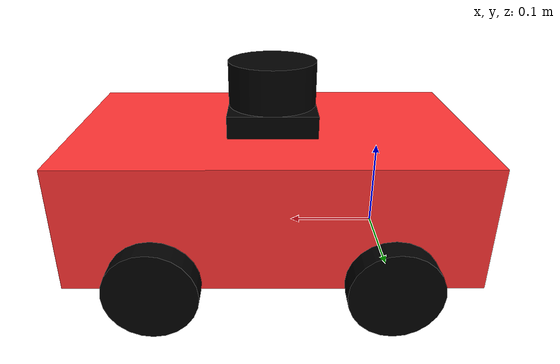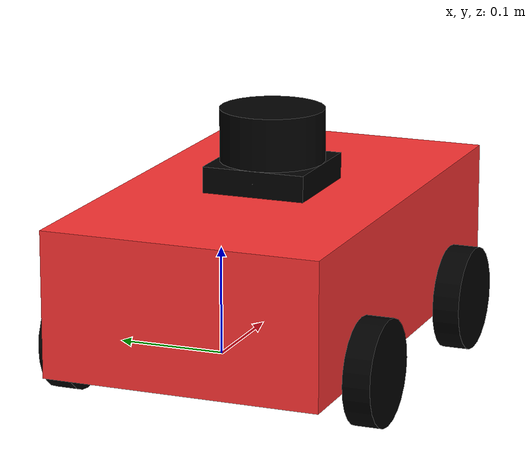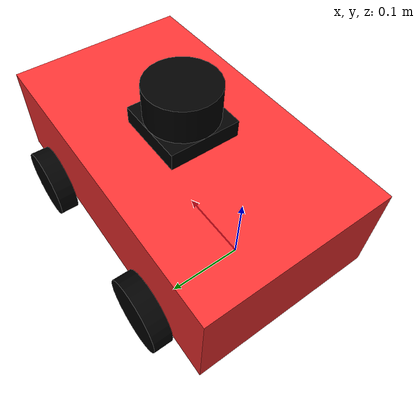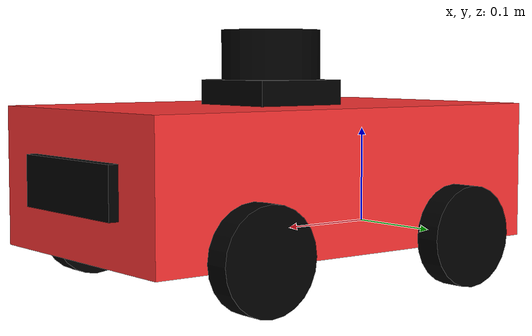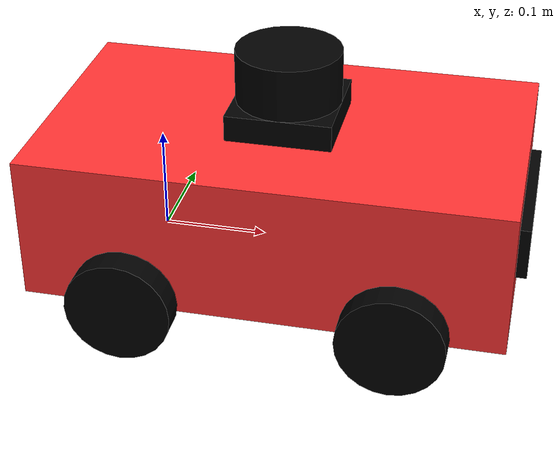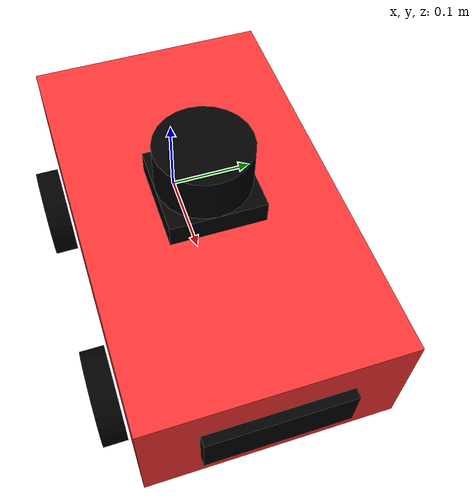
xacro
<?xml version="1.0"?>
<robot xmlns:xacro="http://www.ros.org/wiki/xacro" name="robotie">

    <xacro:include filename="inertia.xacro"/>
    <xacro:include filename="properties.xacro"/>
    <xacro:include filename="gazebo.xacro"/>
    <xacro:include filename="ros2_control.xacro"/>

    <link name="base_link"/>

    <link name="base_footprint">
    </link>
    <joint name="base_footprint_joint" type="fixed">
        <origin xyz="0.0 0.0 0.0" rpy="0.0 0.0 0.0"/>
        <parent link="base_link"/>
        <child link="base_footprint"/>
    </joint>

    <joint name="chassis_joint" type="fixed">
        <parent link="base_link"/>
        <child link="chassis"/>
        <origin xyz="${-wheel_offset_x} 0 ${-wheel_offset_z}"/>
    </joint>

    <link name="chassis">
        <visual>
            <origin xyz="${chassis_length/2} 0 ${chassis_height/2}"/>
            <geometry>
                <box size="${chassis_length} ${chassis_width} ${chassis_height}"/>
            </geometry>
            <material name="orange"/>
        </visual>
        <collision>
            <origin xyz="${chassis_length/2} 0 ${chassis_height/2}"/>
            <geometry>
                <box size="${chassis_length} ${chassis_width} ${chassis_height}"/>
            </geometry>
        </collision>
        <xacro:inertial_box mass="0.5" x="${chassis_length}" y="${chassis_width}" z="${chassis_height}">
            <origin xyz="${chassis_length/2} 0 ${chassis_height/2}" rpy="0 0 0"/>
        </xacro:inertial_box>
    </link>

    <!--BACK-->

    <joint name="left_wheel_joint_back" type="continuous">
        <parent link="base_link"/>
        <child link="left_wheel_back"/>
        <origin xyz="0 ${wheel_offset_y} 0" rpy="-${pi/2} 0 0" />
        <axis xyz="0 0 1"/>

    </joint>

    <link name="left_wheel_back">
        <visual>
            <geometry>
                <cylinder radius="${wheel_radius}" length="${wheel_thickness}"/>
            </geometry>
            <material name="black"/>
        </visual>
        <collision>
            <geometry>
                <sphere radius="${wheel_radius}"/>
            </geometry>
        </collision>
        <xacro:inertial_cylinder mass="${wheel_mass}" length="${wheel_thickness}" radius="${wheel_radius}">
            <origin xyz="0 0 0" rpy="0 0 0"/>
        </xacro:inertial_cylinder>
    </link>

    <joint name="right_wheel_joint_back" type="continuous">
        <parent link="base_link"/>
        <child link="right_wheel_back"/>
        <origin xyz="0 ${-wheel_offset_y} 0" rpy="${pi/2} 0 0" />
        <axis xyz="0 0 -1"/>
    </joint>

    <link name="right_wheel_back">
        <visual>
            <geometry>
                <cylinder radius="${wheel_radius}" length="${wheel_thickness}"/>
            </geometry>
            <material name="black"/>
        </visual>
        <collision>
            <geometry>
                <sphere radius="${wheel_radius}"/>
            </geometry>
        </collision>
        <xacro:inertial_cylinder mass="${wheel_mass}" length="${wheel_thickness}" radius="${wheel_radius}">
            <origin xyz="0 0 0" rpy="0 0 0"/>
        </xacro:inertial_cylinder>
    </link>

    <!--FRONT-->

    <joint name="left_wheel_joint_front" type="continuous">
        <parent link="base_link"/>
        <child link="left_wheel_front"/>
        <origin xyz="${wheel_offset_x_front} ${wheel_offset_y} 0" rpy="-${pi/2} 0 0" />
        <axis xyz="0 0 1"/>
    </joint>

    <link name="left_wheel_front">
        <visual>
            <geometry>
                <cylinder radius="${wheel_radius}" length="${wheel_thickness}"/>
            </geometry>
            <material name="black"/>
        </visual>
        <collision>
            <geometry>
                <sphere radius="${wheel_radius}"/>
            </geometry>
        </collision>
        <xacro:inertial_cylinder mass="${wheel_mass}" length="${wheel_thickness}" radius="${wheel_radius}">
            <origin xyz="0 0 0" rpy="0 0 0"/>
        </xacro:inertial_cylinder>
    </link>

    <joint name="right_wheel_joint_front" type="continuous">
        <parent link="base_link"/>
        <child link="right_wheel_front"/>
        <origin xyz="${wheel_offset_x_front} ${-wheel_offset_y} 0" rpy="${pi/2} 0 0" />
        <axis xyz="0 0 -1"/>
    </joint>

    <link name="right_wheel_front">
        <visual>
            <geometry>
                <cylinder radius="${wheel_radius}" length="${wheel_thickness}"/>
            </geometry>
            <material name="black"/>
        </visual>
        <collision>
            <geometry>
                <sphere radius="${wheel_radius}"/>
            </geometry>
        </collision>
        <xacro:inertial_cylinder mass="${wheel_mass}" length="${wheel_thickness}" radius="${wheel_radius}">
            <origin xyz="0 0 0" rpy="0 0 0"/>
        </xacro:inertial_cylinder>
    </link>

    <!--CAMERA-->

    <joint name="camera_joint" type="fixed">
        <origin xyz="${chassis_length + camera_length/2} 0.0 ${chassis_height/2}" rpy="0.0 0.0 0.0"/>
        <parent link="chassis"/>
        <child link="camera_link"/>
    </joint>

    <link name="camera_link">
        <xacro:inertial_box mass="${camera_mass}" x="${camera_length}" y="${camera_width}" z="${camera_height}">
            <origin xyz="0.0 0.0 0.0" rpy="0.0 0.0 0.0"/>
        </xacro:inertial_box>
        <visual>
            <origin xyz="0.0 0.0 0.0" rpy="0.0 0.0 0.0"/>
            <geometry>
                <box size="${camera_length} ${camera_width} ${camera_height}"/>
            </geometry>
            <material name="black"/>
        </visual>
        <collision>
            <origin xyz="0.0 0.0 0.0" rpy="0.0 0.0 0.0"/>
            <geometry>
                <box size="${camera_length} ${camera_width} ${camera_height}"/>
            </geometry>
        </collision>
    </link>

    <!--LIDAR-->

    <joint name="lidar_base_joint" type="fixed">
        <origin xyz="${chassis_length/2} 0.0 ${chassis_height}" rpy="0.0 0.0 0.0"/>
        <parent link="chassis"/>
        <child link="lidar_base_link"/>
    </joint>

    <link name="lidar_base_link">
        <xacro:inertial_box mass="${lidar_mass}" x="${lidar_base}" y="${lidar_base}" z="${lidar_base}">
            <origin xyz="0.0 0.0 0.0" rpy="0.0 0.0 0.0"/>
        </xacro:inertial_box>
        <visual>
            <origin xyz="0.0 0.0 0.0" rpy="0.0 0.0 0.0"/>
            <geometry>
                <box size="${lidar_base} ${lidar_base} ${lidar_base/2}"/>
            </geometry>
            <material name="black"/>
        </visual>
        <collision>
            <origin xyz="0.0 0.0 0.0" rpy="0.0 0.0 0.0"/>
            <geometry>
                <box size="${lidar_base} ${lidar_base} ${lidar_base/2}"/>
            </geometry>
        </collision>
    </link>

    <joint name="lidar_joint" type="fixed">
        <origin xyz="0.0 0.0 ${lidar_base/4}" rpy="0.0 0.0 0.0"/>
        <parent link="lidar_base_link"/>
        <child link="lidar_link"/>
    </joint>

    <link name="lidar_link">
        <xacro:inertial_cylinder mass="${lidar_mass}" length="${lidar_base}" radius="${lidar_radius}">
            <origin xyz="0 0 0" rpy="0 0 0"/>
        </xacro:inertial_cylinder>
        <visual>
            <origin xyz="0.0 0.0 0.0" rpy="0.0 0.0 0.0"/>
            <geometry>
                <cylinder radius="${lidar_radius}" length="${lidar_base}"/>
            </geometry>
            <material name="black"/>
        </visual>
        <collision>
            <origin xyz="0.0 0.0 0.0" rpy="0.0 0.0 0.0"/>
            <geometry>
                <cylinder radius="${lidar_radius}" length="${lidar_base}"/>
            </geometry>
        </collision>
    </link>
</robot>

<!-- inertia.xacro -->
<robot xmlns:xacro="http://www.ros.org/wiki/xacro">

    <xacro:macro name="inertial_sphere" params="mass radius *origin">
        <inertial>
            <xacro:insert_block name="origin"/>
            <mass value="${mass}"/>
            <inertia ixx="${(2/5) * mass * (radius*radius)}" ixy="0.0" ixz="0.0" iyy="${(2/5) * mass * (radius*radius)}" iyz="0.0" izz="${(2/5) * mass * (radius*radius)}"/>
        </inertial>
    </xacro:macro>

    <xacro:macro name="inertial_box" params="mass x y z *origin">
        <inertial>
            <xacro:insert_block name="origin"/>
            <mass value="${mass}"/>
            <inertia ixx="${(1/12) * mass * (y*y+z*z)}" ixy="0.0" ixz="0.0" iyy="${(1/12) * mass * (x*x+z*z)}" iyz="0.0" izz="${(1/12) * mass * (x*x+y*y)}" />
        </inertial>
    </xacro:macro>

    <xacro:macro name="inertial_cylinder" params="mass length radius *origin">
        <inertial>
            <xacro:insert_block name="origin"/>
            <mass value="${mass}" />
            <inertia ixx="${(1/12) * mass * (3*radius*radius + length*length)}" ixy="0.0" ixz="0.0" iyy="${(1/12) * mass * (3*radius*radius + length*length)}" iyz="0.0" izz="${(1/2) * mass * (radius*radius)}" />
        </inertial>
    </xacro:macro>
</robot>

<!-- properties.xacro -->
<robot xmlns:xacro="http://www.ros.org/wiki/xacro">

    <xacro:property name="chassis_length" value="0.45"/>
    <xacro:property name="chassis_width" value="0.265"/>
    <xacro:property name="chassis_height" value="0.138"/>
    <xacro:property name="chassis_mass" value="1.0"/>
    <xacro:property name="wheel_radius" value="0.05"/>
    <xacro:property name="wheel_thickness" value="0.026"/>
    <xacro:property name="wheel_mass" value="0.05"/>
    <xacro:property name="wheel_offset_x" value="0.1"/>
    <xacro:property name="wheel_offset_x_front" value="0.25"/>
    <xacro:property name="wheel_offset_y" value="0.1485"/>
    <xacro:property name="wheel_offset_z" value="0.01"/>
    <xacro:property name="caster_wheel_radius" value="0.05"/>
    <xacro:property name="caster_wheel_mass" value="0.5"/>
    <xacro:property name="caster_wheel_offset_x" value="0.075"/>
    <xacro:property name="caster_wheel_offset_z" value="${wheel_offset_z - wheel_radius + caster_wheel_radius}"/>
    <xacro:property name="camera_length" value="0.010"/>
    <xacro:property name="camera_width" value="0.150"/>
    <xacro:property name="camera_height" value="0.050"/>
    <xacro:property name="camera_mass" value="0.250"/>
    <xacro:property name="lidar_base" value="0.1"/>
    <xacro:property name="lidar_mass" value="0.1"/>
    <xacro:property name="lidar_radius" value="0.05"/>

    <material name="white">
        <color rgba="1 1 1 1" />
    </material>

    <material name="orange">
        <color rgba="1 0.2 0.2 1"/>
    </material>

    <material name="blue">
        <color rgba="0.2 0.2 1 1"/>
    </material>

    <material name="black">
        <color rgba="0 0 0 1"/>
    </material>

    <material name="red">
        <color rgba="1 0 0 1"/>
    </material>
</robot>
